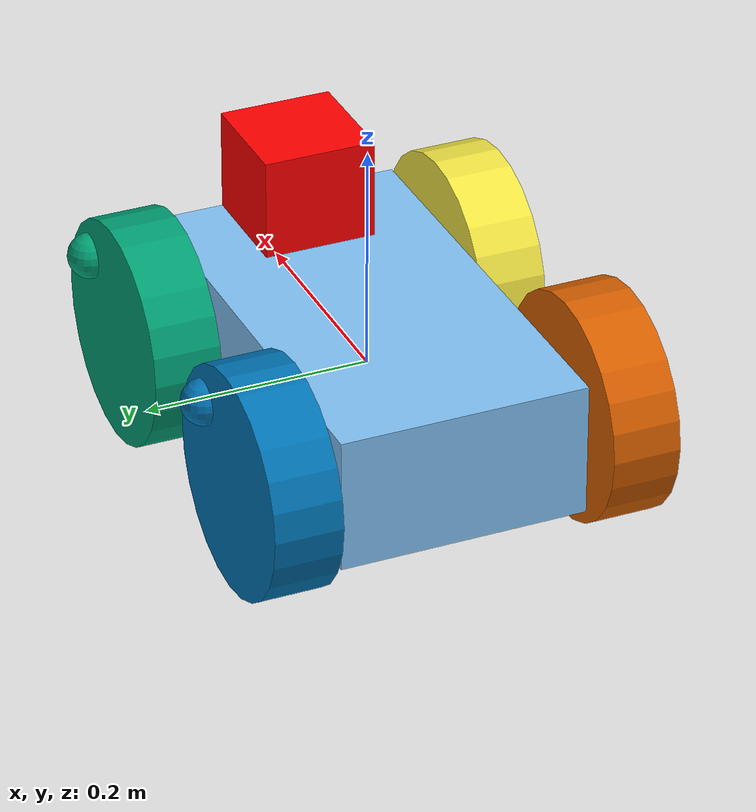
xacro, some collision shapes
<?xml version='1.0'?>

<robot name="myrobot"
    xmlns:xacro="http://www.ros.org/wiki/xacro">
    <!-- PLUGINS -->
    <xacro:include filename="$(find myrobot_gazebo)/urdf/myrobot.gazebo" />

    <!-- PROPERTIES -->
    <xacro:property name="wheel_width" value="0.06" />
    <xacro:property name="wheel_rad" value="0.1" />
    <xacro:property name="wheel_forward_offset" value="0.13" />
    <xacro:property name="wheel_left_offset" value="0.15" />
    <xacro:property name="wheel_friction" value="0.3" />

    <link name="robot_footprint"></link>

    <joint name="robot_footprint_joint" type="fixed">
        <origin xyz="0 0 0" rpy="0 0 0" />
        <parent link="robot_footprint"/>
        <child link="chassis" />
    </joint>

    <link name='chassis'>

        <inertial>
            <mass value="15.0"/>
            <origin xyz="0.0 0 0" rpy=" 0 0 0"/>
            <inertia ixx="0.1" ixy="0" ixz="0" iyy="0.1" iyz="0" izz="0.1" />
        </inertial>

        <collision name='collision'>
            <origin xyz="0 0 0" rpy=" 0 0 0"/>
            <geometry>
                <box size=".4 .22 .12"/>
            </geometry>
        </collision>

        <visual name='chassis_visual'>
            <origin xyz="0 0 0" rpy=" 0 0 0"/>
            <geometry>
                <box size=".4 .22 .12"/>
            </geometry>
        </visual>
    </link>

    <!-- WHEELS - - - - - - - - -->
    <link name="front_left_wheel">
        <visual name="front_left_wheel_visual">
            <geometry>
                <cylinder radius="${wheel_rad}" length="${wheel_width}"/>
            </geometry>
            <origin xyz="0.0 0.0 0.0" rpy="0 1.5707 1.5707"/>
        </visual>
        <collision name="front_left_wheel_collision">
            <geometry>
                <cylinder radius="${wheel_rad}" length="${wheel_width}"/>
            </geometry>
            <origin xyz="0.0 0.0 0.0" rpy="0 1.5707 1.5707"/>
        </collision>
        <inertial>
            <origin xyz="0.0 0.0 0" rpy="0 1.5707 1.5707"/>
            <mass value="5.0"/>
            <inertia ixx="0.1" ixy="0.0" ixz="0.0" iyy="0.1" iyz="0.0" izz="0.1"/>
        </inertial>
        <!-- Feature to see wheel rotating -->
        <visual name='front_left_wheel_bump'>
            <origin xyz="0.05 0.03 0.05" rpy=" 0 0 0"/>
            <geometry>
                <sphere radius="0.02"/>
            </geometry>
        </visual>
    </link>
    <link name="front_right_wheel">
        <visual name="front_right_wheel_visual">
            <geometry>
                <cylinder radius="${wheel_rad}" length="${wheel_width}"/>
            </geometry>
            <origin xyz="0.0 0.0 0.0" rpy="0 1.5707 1.5707"/>
        </visual>
        <collision name="front_right_wheel_collision">
            <geometry>
                <cylinder radius="${wheel_rad}" length="${wheel_width}"/>
            </geometry>
            <origin xyz="0.0 0.0 0.0" rpy="0 1.5707 1.5707"/>
        </collision>
        <inertial>
            <origin xyz="0.0 0.0 0" rpy="00 1.5707 1.5707"/>
            <mass value="5.0"/>
            <inertia ixx="0.1" ixy="0.0" ixz="0.0" iyy="0.1" iyz="0.0" izz="0.1"/>
        </inertial>
        <!-- Feature to see wheel rotating -->
        <visual name='front_right_wheel_bump'>
            <origin xyz="0.05 -0.03 0.05" rpy=" 0 0 0"/>
            <geometry>
                <sphere radius="0.02"/>
            </geometry>
        </visual>
    </link>
    <link name="back_left_wheel">
        <visual name="back_left_wheel_visual">
            <geometry>
                <cylinder radius="${wheel_rad}" length="${wheel_width}"/>
            </geometry>
            <origin xyz="0.0 0.0 0.0" rpy="0 1.5707 1.5707"/>
        </visual>
        <collision name="back_left_wheel_collision">
            <geometry>
                <cylinder radius="${wheel_rad}" length="${wheel_width}"/>
            </geometry>
            <origin xyz="0.0 0.0 0.0" rpy="0 1.5707 1.5707"/>
        </collision>
        <inertial>
            <origin xyz="0.0 0.0 0" rpy="0 1.5707 1.5707"/>
            <mass value="5.0"/>
            <inertia ixx="0.1" ixy="0.0" ixz="0.0" iyy="0.1" iyz="0.0" izz="0.1"/>
        </inertial>
        <!-- Feature to see wheel rotating -->
        <visual name='back_right_wheel_bump'>
            <origin xyz="0.05 0.03 0.05" rpy=" 0 0 0"/>
            <geometry>
                <sphere radius="0.02"/>
            </geometry>
        </visual>
    </link>
    <link name="back_right_wheel">
        <visual name="back_right_wheel_visual">
            <geometry>
                <cylinder radius="${wheel_rad}" length="${wheel_width}"/>
            </geometry>
            <origin xyz="0.0 0.0 0.0" rpy="0 1.5707 1.5707"/>
        </visual>
        <collision name="back_right_wheel_collision">
            <geometry>
                <cylinder radius="${wheel_rad}" length="${wheel_width}"/>
            </geometry>
            <origin xyz="0.0 0.0 0.0" rpy="0 1.5707 1.5707"/>
        </collision>
        <inertial>
            <origin xyz="0.0 0.0 0" rpy="00 1.5707 1.5707"/>
            <mass value="5.0"/>
            <inertia ixx="0.1" ixy="0.0" ixz="0.0" iyy="0.1" iyz="0.0" izz="0.1"/>
        </inertial>
        <!-- Feature to see wheel rotating -->
        <visual name='front_right_wheel_bump'>
            <origin xyz="0.05 -0.03 0.05" rpy=" 0 0 0"/>
            <geometry>
                <sphere radius="0.02"/>
            </geometry>
        </visual>
    </link>

    <joint type="continuous" name="front_left_wheel_joint">
        <origin xyz="${wheel_forward_offset} ${wheel_left_offset} 0" rpy="0 0 0"/>
        <child link="front_left_wheel"/>
        <parent link="chassis"/>
        <axis xyz="0 1 0" rpy="0 0 0"/>
        <limit effort="10000" velocity="1000"/>
        <dynamics damping="1.0" friction="${wheel_friction}"/>
    </joint>
    <joint type="continuous" name="front_right_wheel_joint">
        <origin xyz="${wheel_forward_offset} -${wheel_left_offset} 0" rpy="0 0 0"/>
        <child link="front_right_wheel"/>
        <parent link="chassis"/>
        <axis xyz="0 1 0" rpy="0 0 0"/>
        <limit effort="10000" velocity="1000"/>
        <dynamics damping="1.0" friction="${wheel_friction}"/>
    </joint>
    <joint type="continuous" name="back_left_wheel_joint">
        <origin xyz="-${wheel_forward_offset} ${wheel_left_offset} 0" rpy="0 0 0"/>
        <child link="back_left_wheel"/>
        <parent link="chassis"/>
        <axis xyz="0 1 0" rpy="0 0 0"/>
        <limit effort="10000" velocity="1000"/>
        <dynamics damping="1.0" friction="${wheel_friction}"/>
    </joint>
    <joint type="continuous" name="back_right_wheel_joint">
        <origin xyz="-${wheel_forward_offset} -${wheel_left_offset} 0" rpy="0 0 0"/>
        <child link="back_right_wheel"/>
        <parent link="chassis"/>
        <axis xyz="0 1 0" rpy="0 0 0"/>
        <limit effort="10000" velocity="1000"/>
        <dynamics damping="1.0" friction="${wheel_friction}"/>
    </joint>

    <transmission name="front_left_wheel_transmission">
        <type>transmission_interface/SimpleTransmission</type>
        <joint name="front_left_wheel_joint">
            <hardwareInterface>hardware_interface/VelocityJointInterface</hardwareInterface>
        </joint>
        <actuator name="front_left_wheel_actuator">
        </actuator>
    </transmission>
    <transmission name="front_right_wheel_transmission">
        <type>transmission_interface/SimpleTransmission</type>
        <joint name="front_right_wheel_joint">
            <hardwareInterface>hardware_interface/VelocityJointInterface</hardwareInterface>
        </joint>
        <actuator name="front_right_wheel_actuator">
        </actuator>
    </transmission>
    <transmission name="back_left_wheel_transmission">
        <type>transmission_interface/SimpleTransmission</type>
        <joint name="back_left_wheel_joint">
            <hardwareInterface>hardware_interface/VelocityJointInterface</hardwareInterface>
        </joint>
        <actuator name="back_left_wheel_actuator">
        </actuator>
    </transmission>
    <transmission name="back_right_wheel_transmission">
        <type>transmission_interface/SimpleTransmission</type>
        <joint name="back_right_wheel_joint">
            <hardwareInterface>hardware_interface/VelocityJointInterface</hardwareInterface>
        </joint>
        <actuator name="back_right_wheel_actuator">
        </actuator>
    </transmission>

    <!-- SENSORS - - - - - - - - -->
    <link name="camera">
        <inertial>
            <origin xyz="0.0 0.0 0.0" rpy="0.0 0.0 0.0"/>
            <mass value="0.1"/>
            <inertia ixx="1e-6" ixy="0.0" ixz="0.0" iyy="1e-6" iyz="0.0" izz="1e-6"/>
        </inertial>
        <visual name="camera_visual">
            <origin xyz="0.0 0.0 0.0" rpy="0.0 0.0 0.0"/>
            <geometry>
                <box size="0.05 0.05 0.05"/>
            </geometry>
            <material name="">
                <color rgba="1.0 0.0 0.0 1.0"/>
                <texture filename=""/>
            </material>
        </visual>
        <collision name="camera_collision">
            <origin xyz="0.0 0.0 0.0" rpy="0.0 0.0 0.0"/>
            <geometry>
                <box size="0.05 0.05 0.05"/>
            </geometry>
            <friction>
            <ode>
                <mu>0.1</mu>
                <mu2>0.1</mu2>
            </ode>
            </friction>
        </collision>
    </link>
    <joint name="camera_joint" type="fixed">
        <origin xyz="0.2 0.0 0.0" rpy="0.0 0.0 0.0"/>
        <parent link="chassis"/>
        <child link="camera"/>
        <axis xyz="0 1 0"/>
    </joint>

    <link name="hokuyo">
        <inertial>
            <origin xyz="0.0 0.0 0.0" rpy="0.0 0.0 0.0"/>
            <mass value="1e-5"/>
            <inertia ixx="1e-6" ixy="0.0" ixz="0.0" iyy="1e-6" iyz="0.0" izz="1e-6"/>
        </inertial>
        <visual name="">
            <origin xyz="0.0 0.0 0.0" rpy="0.0 0.0 0.0"/>
            <geometry>
                <mesh filename="package://myrobot_gazebo/meshes/hokuyo.dae" />
            </geometry>
            <material name="">
                <color rgba="1.0 0.0 0.0 1.0"/>
                <texture filename=""/>
            </material>
        </visual>
        <collision>
            <origin xyz="0.0 0.0 0.0" rpy="0.0 0.0 0.0"/>
            <geometry>
                <box size="0.1 0.1 0.1"/>
            </geometry>
        </collision>
    </link>
    <joint name="hokuyo_joint" type="fixed">
        <origin xyz="0.15 0.0 0.1" rpy="0.0 0.0 0.0"/>
        <parent link="chassis"/>
        <child link="hokuyo"/>
        <axis xyz="0 1 0"/>

    </joint>

    <!-- COLORS - - - - - - - - -->
    <gazebo reference="left_wheel">
        <material>Gazebo/Turquoise</material>
    </gazebo>
    <gazebo reference="right_wheel">
        <material>Gazebo/Turquoise</material>
    </gazebo>
    <gazebo reference="chassis">
        <material>Gazebo/SkyBlue</material>
    </gazebo>
</robot>
